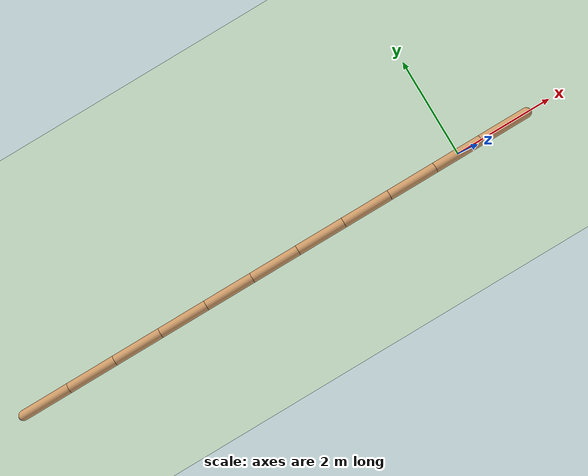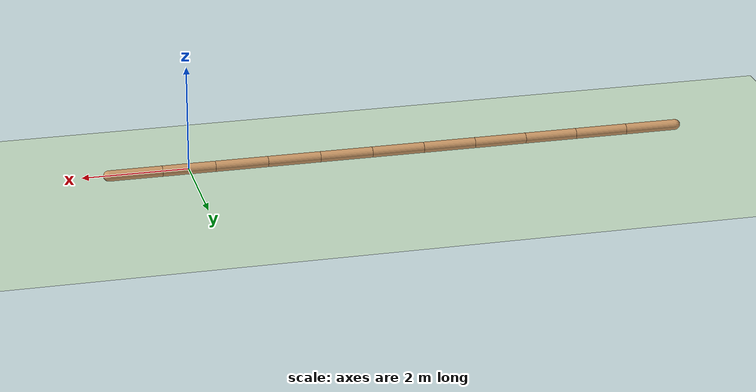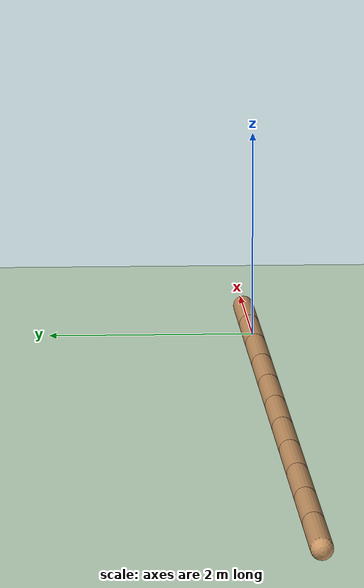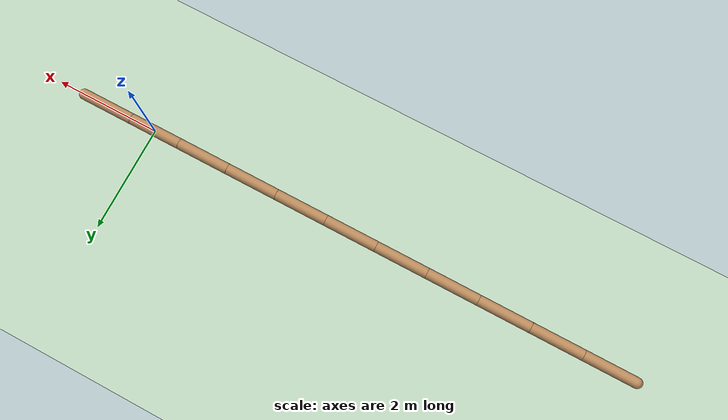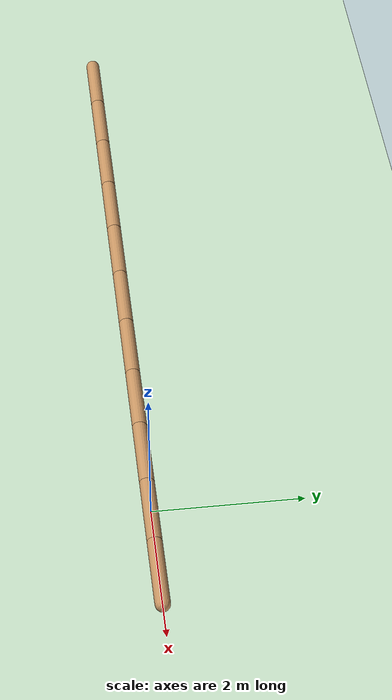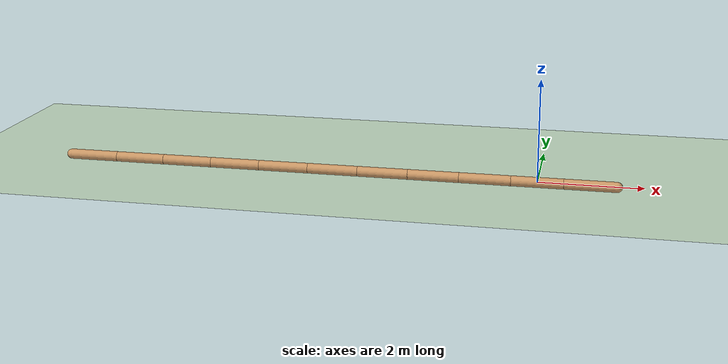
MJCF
<mujoco model="swimmer">
  <compiler angle="degree" coordinate="local" inertiafromgeom="true"/>
  <option collision="predefined" density="4000" integrator="RK4" timestep="0.005" viscosity="0.1"/>
  <default>
    <geom conaffinity="1" condim="1" contype="1" material="geom" rgba="0.8 0.6 .4 1"/>
    <joint armature='0.1'  />
  </default>
  <asset>
    <texture builtin="gradient" height="100" rgb1="1 1 1" rgb2="0 0 0" type="skybox" width="100"/>
    <texture builtin="flat" height="1278" mark="cross" markrgb="1 1 1" name="texgeom" random="0.01" rgb1="0.8 0.6 0.4" rgb2="0.8 0.6 0.4" type="cube" width="127"/>
    <texture builtin="checker" height="100" name="texplane" rgb1="0 0 0" rgb2="0.8 0.8 0.8" type="2d" width="100"/>
    <material name="MatPlane" reflectance="0.5" shininess="1" specular="1" texrepeat="30 30" texture="texplane"/>
    <material name="geom" texture="texgeom" texuniform="true"/>
  </asset>
  <worldbody>
    <light cutoff="100" diffuse="1 1 1" dir="-0 0 -1.3" directional="true" exponent="1" pos="0 0 1.3" specular=".1 .1 .1"/>
    <geom conaffinity="1" condim="3" material="MatPlane" name="floor" pos="0 0 -0.1" rgba="0.8 0.9 0.8 1" size="40 40 0.1" type="plane"/>
    <!--  ================= SWIMMER ================= /-->
    <body name="torso" pos="0 0 0">
      <geom density="1000" fromto="1.5 0 0 0.5 0 0" size="0.1" type="capsule"/>
      <joint axis="1 0 0" name="slider1" pos="0 0 0" type="slide"/>
      <joint axis="0 1 0" name="slider2" pos="0 0 0" type="slide"/>
      <joint axis="0 0 1" name="rot" pos="0 0 0" type="hinge"/>
      <body name="mid0" pos="0.5 0 0">
        <geom density="1000" fromto="0 0 0 -1 0 0" size="0.1" type="capsule"/>
        <joint axis="0 0 1" limited="true" name="rot0" pos="0 0 0" range="-100 100" type="hinge"/>

        <body name="mid1" pos="-1 0 0">
          <geom density="1000" fromto="0 0 0 -1 0 0" size="0.1" type="capsule"/>
          <joint axis="0 0 1" limited="true" name="rot1" pos="0 0 0" range="-100 100" type="hinge"/>

        <body name="mid2" pos="-1 0 0">
          <geom density="1000" fromto="0 0 0 -1 0 0" size="0.1" type="capsule"/>
          <joint axis="0 0 -1" limited="true" name="rot2" pos="0 0 0" range="-100 100" type="hinge"/>

        <body name="mid3" pos="-1 0 0">
          <geom density="1000" fromto="0 0 0 -1 0 0" size="0.1" type="capsule"/>
          <joint axis="0 0 1" limited="true" name="rot3" pos="0 0 0" range="-100 100" type="hinge"/>

        <body name="mid4" pos="-1 0 0">
          <geom density="1000" fromto="0 0 0 -1 0 0" size="0.1" type="capsule"/>
          <joint axis="0 0 -1" limited="true" name="rot4" pos="0 0 0" range="-100 100" type="hinge"/>

        <body name="mid5" pos="-1 0 0">
          <geom density="1000" fromto="0 0 0 -1 0 0" size="0.1" type="capsule"/>
          <joint axis="0 0 1" limited="true" name="rot5" pos="0 0 0" range="-100 100" type="hinge"/>

        <body name="mid6" pos="-1 0 0">
          <geom density="1000" fromto="0 0 0 -1 0 0" size="0.1" type="capsule"/>
          <joint axis="0 0 -1" limited="true" name="rot6" pos="0 0 0" range="-100 100" type="hinge"/>

        <body name="mid7" pos="-1 0 0">
          <geom density="1000" fromto="0 0 0 -1 0 0" size="0.1" type="capsule"/>
          <joint axis="0 0 1" limited="true" name="rot7" pos="0 0 0" range="-100 100" type="hinge"/>

        <body name="mid8" pos="-1 0 0">
          <geom density="1000" fromto="0 0 0 -1 0 0" size="0.1" type="capsule"/>
          <joint axis="0 0 -1" limited="true" name="rot8" pos="0 0 0" range="-100 100" type="hinge"/>

        <body name="back" pos="-1 0 0">
            <geom density="1000" fromto="0 0 0 -1 0 0" size="0.1" type="capsule"/>
            <joint axis="0 0 1" limited="true" name="rot9" pos="0 0 0" range="-100 100" type="hinge"/>
          </body>
        </body>
</body>
</body>
</body>
</body>
</body>
</body>
</body>

      </body>
    </body>
  </worldbody>
  <actuator>
	 <motor ctrllimited="true" ctrlrange="-1 1" gear="150.0" joint="rot0"/>
	 <motor ctrllimited="true" ctrlrange="-1 1" gear="150.0" joint="rot1"/>
	 <motor ctrllimited="true" ctrlrange="-1 1" gear="150.0" joint="rot2"/>
	 <motor ctrllimited="true" ctrlrange="-1 1" gear="150.0" joint="rot3"/>
	 <motor ctrllimited="true" ctrlrange="-1 1" gear="150.0" joint="rot4"/>
	 <motor ctrllimited="true" ctrlrange="-1 1" gear="150.0" joint="rot5"/>
	 <motor ctrllimited="true" ctrlrange="-1 1" gear="150.0" joint="rot6"/>
	 <motor ctrllimited="true" ctrlrange="-1 1" gear="150.0" joint="rot7"/>
	 <motor ctrllimited="true" ctrlrange="-1 1" gear="150.0" joint="rot8"/>
	 <motor ctrllimited="true" ctrlrange="-1 1" gear="150.0" joint="rot9"/>

  </actuator>
</mujoco>
